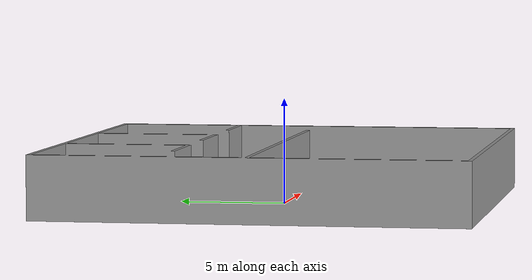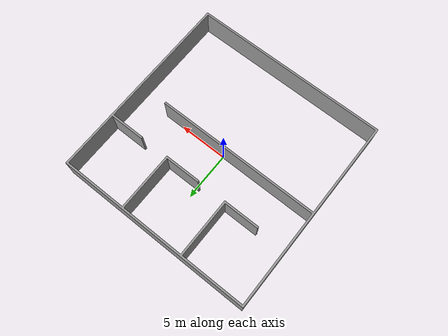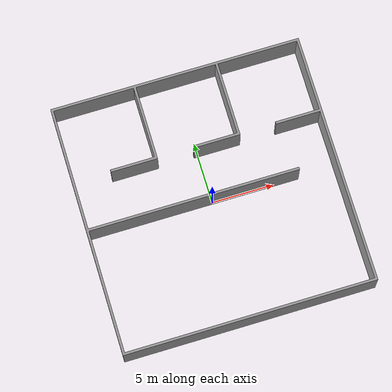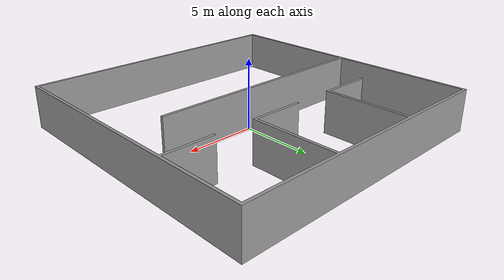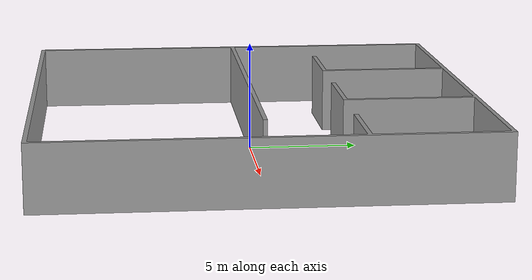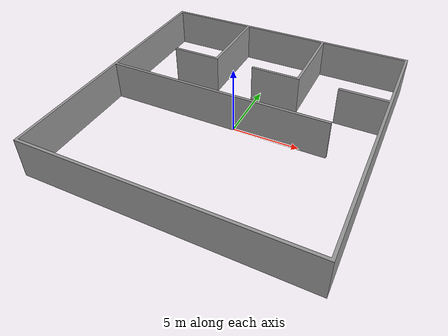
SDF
<?xml version='1.0'?>
<sdf version='1.6'>
  <model name='warehouse'>
    <link name='link_0'>
      <pose frame=''>0 0 0 0 -0 0</pose>
      <inertial>
        <mass>1</mass>
        <inertia>
          <ixx>0.166667</ixx>
          <ixy>0</ixy>
          <ixz>0</ixz>
          <iyy>0.166667</iyy>
          <iyz>0</iyz>
          <izz>0.166667</izz>
        </inertia>
        <pose frame=''>0 0 0 0 -0 0</pose>
      </inertial>
      <self_collide>0</self_collide>
      <kinematic>0</kinematic>
      <gravity>1</gravity>
      <visual name='visual'>
        <pose frame=''>0 0 0 0 -0 0</pose>
        <geometry>
          <mesh>
            <uri>meshes/warehouse.stl</uri>
            <scale>1 1 1</scale>
          </mesh>
        </geometry>
        <material>
          <lighting>1</lighting>
          <script>
            <uri>file://media/materials/scripts/gazebo.material</uri>
            <name>Gazebo/Grey</name>
          </script>
          <ambient>0.95 0.95 0.95 1</ambient>
          <diffuse>0.95 0.95 0.95 1</diffuse>
          <specular>0.01 0.01 0.01 1</specular>
          <emissive>0 0 0 1</emissive>
          <shader type='vertex'>
            <normal_map>__default__</normal_map>
          </shader>
        </material>
        <cast_shadows>1</cast_shadows>
        <transparency>0</transparency>
      </visual>
      <collision name='collision'>
        <laser_retro>0</laser_retro>
        <max_contacts>10</max_contacts>
        <pose frame=''>0 0 0 0 -0 0</pose>
        <geometry>
          <mesh>
            <uri>meshes/warehouse.stl</uri>
          </mesh>
        </geometry>
      </collision>
    </link>
    <static>1</static>
    <allow_auto_disable>1</allow_auto_disable>
  </model>
</sdf>
